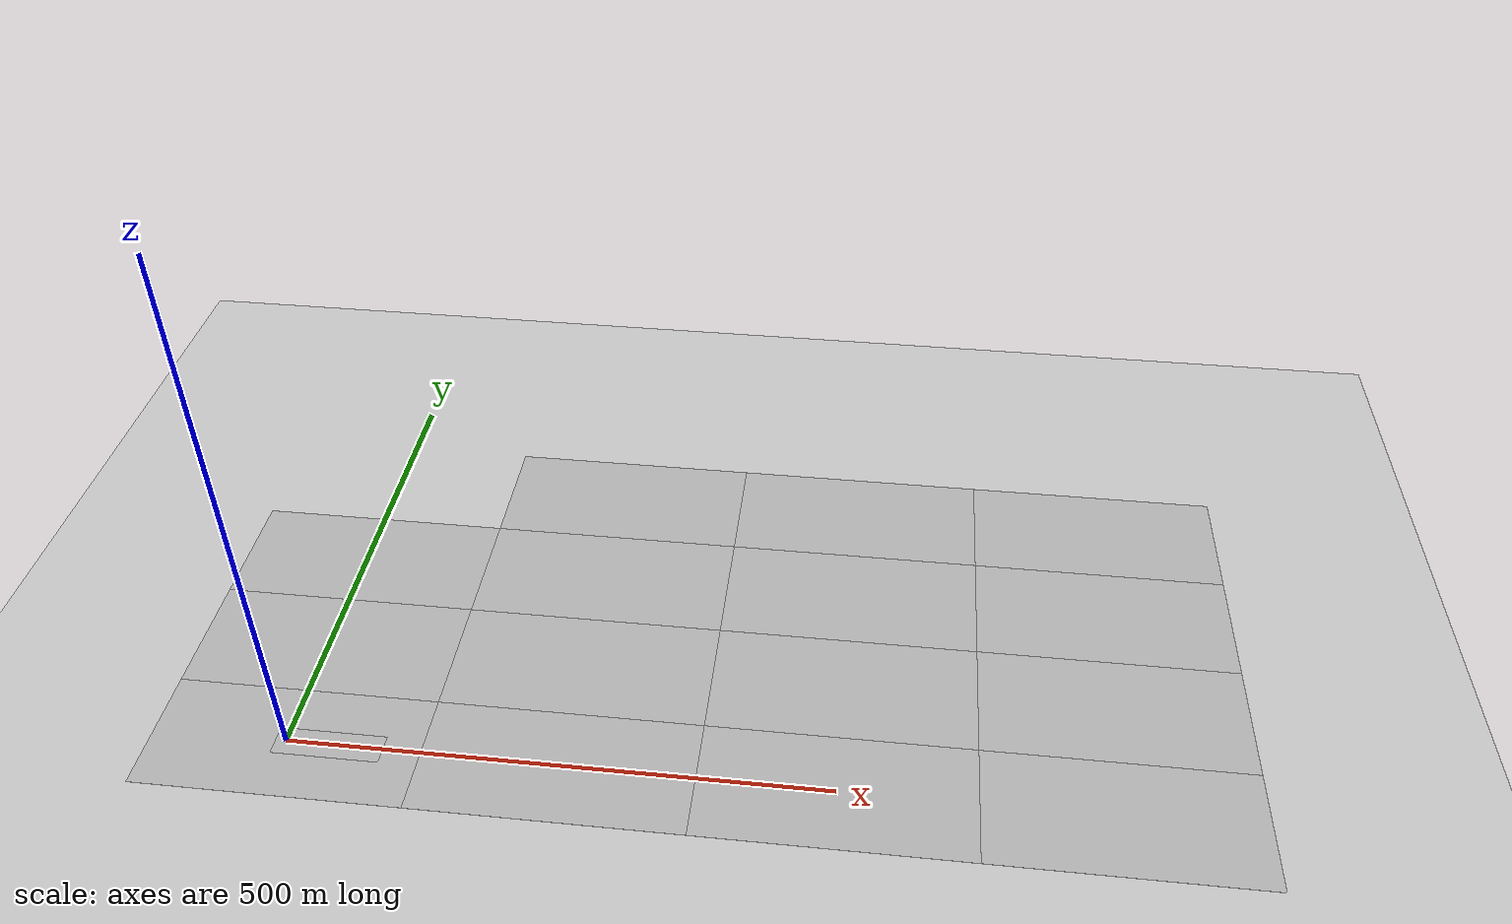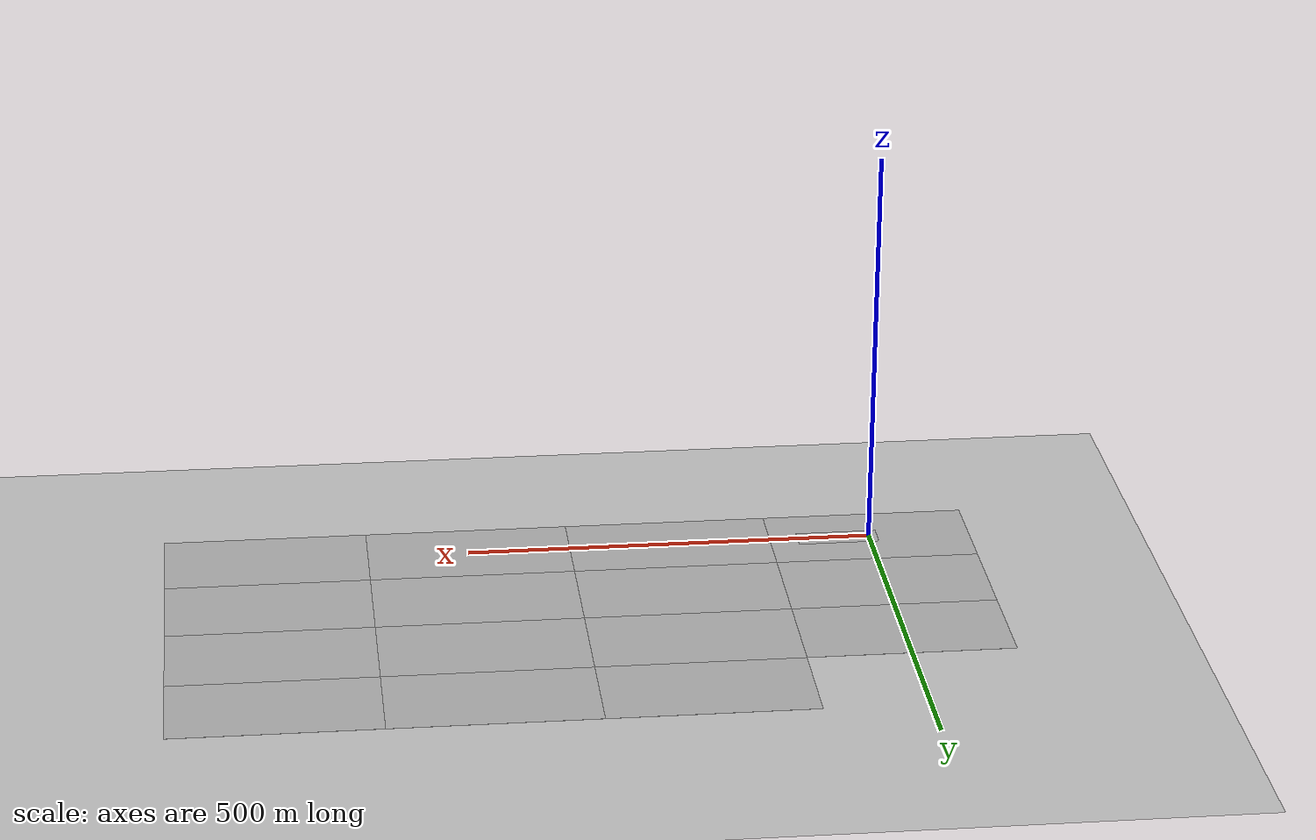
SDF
<?xml version="1.0" ?>
<sdf version="1.4">
  <world name="rafz">
    <gui>
      <camera name="user_camera">
        <pose>-4.660200 -1.942800 2.053900 0.000000 0.443643 0.352194</pose>
      </camera>
      <plugin name="view_selection" filename="librotors_gazebo_view_control_plugin.so"/>
    </gui>

    <include>
      <uri>model://rafz</uri>
    </include>

    <include>
      <uri>model://runway</uri>
    </include>

    <spherical_coordinates>
      <surface_model>EARTH_WGS84</surface_model>
      <latitude_deg>47.3667</latitude_deg>
      <longitude_deg>8.5500</longitude_deg>
      <elevation>500.0</elevation>
      <heading_deg>90.0</heading_deg>
    </spherical_coordinates>

    <physics type='ode'>
      <ode>
        <solver>
          <type>quick</type>
          <iters>250</iters>
          <sor>1.3</sor>
        </solver>
        <constraints>
          <cfm>0</cfm>
          <erp>0.2</erp>
          <contact_max_correcting_vel>100</contact_max_correcting_vel>
          <contact_surface_layer>0.001</contact_surface_layer>
        </constraints>
      </ode>
      <max_step_size>0.01</max_step_size>
      <real_time_factor>1</real_time_factor>
      <real_time_update_rate>100</real_time_update_rate>
      <gravity>0 0 -9.8</gravity>
    </physics>

    <light type="directional" name="sun">
      <cast_shadows>false</cast_shadows>
      <pose>0 0 100 0 0 0</pose>
      <diffuse>0.8 0.8 0.8 1</diffuse>
      <specular>0.1 0.1 0.1 1</specular>
      <attenuation>
        <range>500</range>
        <constant>0.9</constant>
        <linear>0.01</linear>
        <quadratic>0.001</quadratic>
      </attenuation>
      <direction>0.2 0.2 -0.9</direction>
    </light>

    <scene>
      <ambient>0.5 0.5 0.5 1</ambient>
      <background>0.5 0.5 0.5 1</background>
      <shadows>0</shadows>
      <sky>
        <clouds>
          <speed>0</speed>
        </clouds>
      </sky>
    </scene>
  </world>
</sdf>

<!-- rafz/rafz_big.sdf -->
<sdf version="1.4">
<model name="rafz">
  <static>true</static>
  <link name="rafz">
    <collision name="collision">
      <geometry>
        <plane>
          <normal>0 0 1</normal>
          <size>1000 500</size>
        </plane>
      </geometry>
      <surface>
        <friction>
          <ode>
            <mu>0.2</mu>
            <mu2>0.2</mu2>
          </ode>
        </friction>
      </surface>
    </collision>

    <visual name="visual_1">
      <pose>0 375 0 0 0 0</pose>
      <cast_shadows>false</cast_shadows>
      <geometry>
        <plane>
          <normal>0 0 1</normal>
          <size>250 125</size>
        </plane>
      </geometry>
      <material>
        <script>
          <uri>model://rafz/materials/scripts</uri>
          <uri>model://rafz/materials/textures</uri>
          <name>Rafz/Rafz1</name>
        </script>
      </material>
    </visual>

    <visual name="visual_2">
      <pose>0 250 0 0 0 0</pose>
      <cast_shadows>false</cast_shadows>
      <geometry>
        <plane>
          <normal>0 0 1</normal>
          <size>250 125</size>
        </plane>
      </geometry>
      <material>
        <script>
          <uri>model://rafz/materials/scripts</uri>
          <uri>model://rafz/materials/textures</uri>
          <name>Rafz/Rafz2</name>
        </script>
      </material>
    </visual>

    <visual name="visual_3">
      <pose>0 125 0 0 0 0</pose>
      <cast_shadows>false</cast_shadows>
      <geometry>
        <plane>
          <normal>0 0 1</normal>
          <size>250 125</size>
        </plane>
      </geometry>
      <material>
        <script>
          <uri>model://rafz/materials/scripts</uri>
          <uri>model://rafz/materials/textures</uri>
          <name>Rafz/Rafz3</name>
        </script>
      </material>
    </visual>

    <visual name="visual_4">
      <pose>0 0 0 0 0 0</pose>
      <cast_shadows>false</cast_shadows>
      <geometry>
        <plane>
          <normal>0 0 1</normal>
          <size>250 125</size>
        </plane>
      </geometry>
      <material>
        <script>
          <uri>model://rafz/materials/scripts</uri>
          <uri>model://rafz/materials/textures</uri>
          <name>Rafz/Rafz4</name>
        </script>
      </material>
    </visual>

    <visual name="visual_5">
      <pose>250 0 0 0 0 0</pose>
      <cast_shadows>false</cast_shadows>
      <geometry>
        <plane>
          <normal>0 0 1</normal>
          <size>250 125</size>
        </plane>
      </geometry>
      <material>
        <script>
          <uri>model://rafz/materials/scripts</uri>
          <uri>model://rafz/materials/textures</uri>
          <name>Rafz/Rafz5</name>
        </script>
      </material>
    </visual>

    <visual name="visual_6">
      <pose>250 125 0 0 0 0</pose>
      <cast_shadows>false</cast_shadows>
      <geometry>
        <plane>
          <normal>0 0 1</normal>
          <size>250 125</size>
        </plane>
      </geometry>
      <material>
        <script>
          <uri>model://rafz/materials/scripts</uri>
          <uri>model://rafz/materials/textures</uri>
          <name>Rafz/Rafz6</name>
        </script>
      </material>
    </visual>

    <visual name="visual_7">
      <pose>250 250 0 0 0 0</pose>
      <cast_shadows>false</cast_shadows>
      <geometry>
        <plane>
          <normal>0 0 1</normal>
          <size>250 125</size>
        </plane>
      </geometry>
      <material>
        <script>
          <uri>model://rafz/materials/scripts</uri>
          <uri>model://rafz/materials/textures</uri>
          <name>Rafz/Rafz7</name>
        </script>
      </material>
    </visual>

    <visual name="visual_8">
      <pose>250 375 0 0 0 0</pose>
      <cast_shadows>false</cast_shadows>
      <geometry>
        <plane>
          <normal>0 0 1</normal>
          <size>250 125</size>
        </plane>
      </geometry>
      <material>
        <script>
          <uri>model://rafz/materials/scripts</uri>
          <uri>model://rafz/materials/textures</uri>
          <name>Rafz/Rafz8</name>
        </script>
      </material>
    </visual>

    <visual name="visual_9">
      <pose>500 375 0 0 0 0</pose>
      <cast_shadows>false</cast_shadows>
      <geometry>
        <plane>
          <normal>0 0 1</normal>
          <size>250 125</size>
        </plane>
      </geometry>
      <material>
        <script>
          <uri>model://rafz/materials/scripts</uri>
          <uri>model://rafz/materials/textures</uri>
          <name>Rafz/Rafz9</name>
        </script>
      </material>
    </visual>

    <visual name="visual_10">
      <pose>500 250 0 0 0 0</pose>
      <cast_shadows>false</cast_shadows>
      <geometry>
        <plane>
          <normal>0 0 1</normal>
          <size>250 125</size>
        </plane>
      </geometry>
      <material>
        <script>
          <uri>model://rafz/materials/scripts</uri>
          <uri>model://rafz/materials/textures</uri>
          <name>Rafz/Rafz10</name>
        </script>
      </material>
    </visual>

    <visual name="visual_11">
      <pose>500 125 0 0 0 0</pose>
      <cast_shadows>false</cast_shadows>
      <geometry>
        <plane>
          <normal>0 0 1</normal>
          <size>250 125</size>
        </plane>
      </geometry>
      <material>
        <script>
          <uri>model://rafz/materials/scripts</uri>
          <uri>model://rafz/materials/textures</uri>
          <name>Rafz/Rafz11</name>
        </script>
      </material>
    </visual>

    <visual name="visual_12">
      <pose>500 0 0 0 0 0</pose>
      <cast_shadows>false</cast_shadows>
      <geometry>
        <plane>
          <normal>0 0 1</normal>
          <size>250 125</size>
        </plane>
      </geometry>
      <material>
        <script>
          <uri>model://rafz/materials/scripts</uri>
          <uri>model://rafz/materials/textures</uri>
          <name>Rafz/Rafz12</name>
        </script>
      </material>
    </visual>

    <visual name="visual_13">
      <pose>750 0 0 0 0 0</pose>
      <cast_shadows>false</cast_shadows>
      <geometry>
        <plane>
          <normal>0 0 1</normal>
          <size>250 125</size>
        </plane>
      </geometry>
      <material>
        <script>
          <uri>model://rafz/materials/scripts</uri>
          <uri>model://rafz/materials/textures</uri>
          <name>Rafz/Rafz13</name>
        </script>
      </material>
    </visual>

    <visual name="visual_14">
      <pose>750 125 0 0 0 0</pose>
      <cast_shadows>false</cast_shadows>
      <geometry>
        <plane>
          <normal>0 0 1</normal>
          <size>250 125</size>
        </plane>
      </geometry>
      <material>
        <script>
          <uri>model://rafz/materials/scripts</uri>
          <uri>model://rafz/materials/textures</uri>
          <name>Rafz/Rafz14</name>
        </script>
      </material>
    </visual>

    <visual name="visual_15">
      <pose>750 250 0 0 0 0</pose>
      <cast_shadows>false</cast_shadows>
      <geometry>
        <plane>
          <normal>0 0 1</normal>
          <size>250 125</size>
        </plane>
      </geometry>
      <material>
        <script>
          <uri>model://rafz/materials/scripts</uri>
          <uri>model://rafz/materials/textures</uri>
          <name>Rafz/Rafz15</name>
        </script>
      </material>
    </visual>

    <visual name="visual_16">
      <pose>750 375 0 0 0 0</pose>
      <cast_shadows>false</cast_shadows>
      <geometry>
        <plane>
          <normal>0 0 1</normal>
          <size>250 125</size>
        </plane>
      </geometry>
      <material>
        <script>
          <uri>model://rafz/materials/scripts</uri>
          <uri>model://rafz/materials/textures</uri>
          <name>Rafz/Rafz16</name>
        </script>
      </material>
    </visual>
  </link>
</model>
</sdf>

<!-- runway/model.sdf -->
<sdf version="1.4">
<model name="runway">
  <static>true</static>
    <link name="ground">
    <pose>40 0 0.05 0 0 0</pose>
      <collision name="collision">
        <geometry>
          <plane>
            <normal>0 0 1</normal>
            <size>100 30</size>
          </plane>
        </geometry>
        <surface>
          <friction>
            <ode>
              <mu>0.2</mu>
              <mu2>0.2</mu2>
            </ode>
          </friction>
        </surface>
      </collision>
      <visual name="visual">
        <cast_shadows>false</cast_shadows>
        <geometry>
          <plane>
            <normal>0 0 1</normal>
            <size>100 30</size>
          </plane>
        </geometry>
        <material>
          <script>
            <uri>model://runway/materials/scripts</uri>
            <uri>model://runway/materials/textures</uri>
            <name>Runway/Runway</name>
          </script>
        </material>
      </visual>
    </link>
  </model>
</sdf>
